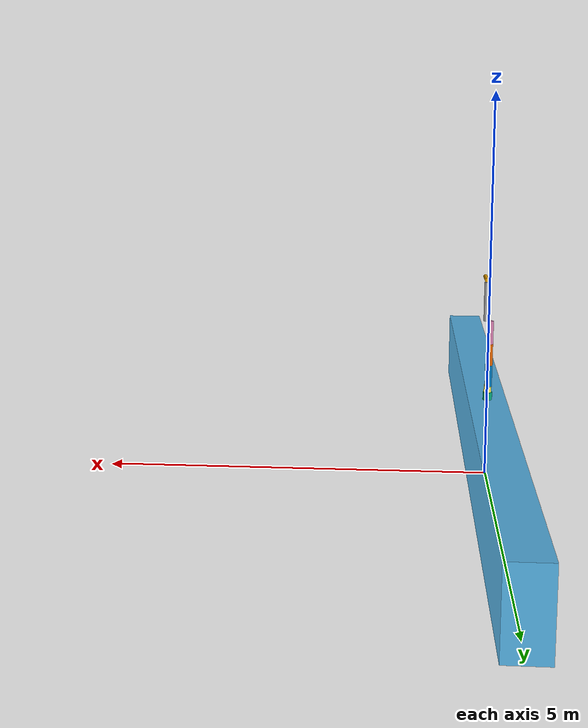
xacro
<?xml version="1.0"?>
        <robot xmlns:xacro="http://wiki.ros.org/xacro"  name="arm">
        <xacro:include filename="$(find man_gazebo)/urdf/common.gazebo.xacro" />
        <xacro:include filename="$(find man_gazebo)/urdf/6dof/transmission_6dof.xacro" />
        <xacro:include filename="$(find man_gazebo)/urdf/gazebo.xacro" />

        <link name="world" />

        <joint name="world_joint" type="fixed">
            <parent link="world" />
            <child link = "base_link" />
            <origin xyz="0 0 0" rpy="0.0 0.0 0.0" />
        </joint>

        <xacro:macro name="cylinder_inertial" params="radius length mass *origin">
        <inertial>
          <mass value="${mass}" />
          <xacro:insert_block name="origin" />
          <inertia ixx="${0.0833333 * mass * (3 * radius * radius + length * length)}" ixy="0.0" ixz="0.0"
            iyy="${0.0833333 * mass * (3 * radius * radius + length * length)}" iyz="0.0"
            izz="${0.5 * mass * radius * radius}" />
        </inertial>
        </xacro:macro>

        <xacro:macro name="joint_limit" params="joint_type link_length ">
            <xacro:if value="${joint_type == 'revolute'}"  >
                <xacro:property name="joint_upper_limit" value="${pi}" />
                <xacro:property name="joint_lower_limit" value="${-pi}" />
            </xacro:if>
            <xacro:unless value="${joint_type == 'revolute'}"  >
                <xacro:property name="joint_upper_limit" value="${link_length}" />
                <xacro:property name="joint_lower_limit" value="${0}" />
            </xacro:unless>
        <limit lower="${joint_lower_limit}" upper="${joint_upper_limit}" effort="150.0" velocity="3.15"/>
        </xacro:macro>

        <xacro:macro name="arm_robot" params="prefix ">
        <xacro:property name="base_radius" value="0.060" />
        <xacro:property name="base_length"  value="11" />
        <xacro:property name="base_height"  value="1" />
        <xacro:property name="base_width"  value="0.5" />
        <xacro:property name="base_mass" value="44" />

            <!-- Inertia parameters -->
        <xacro:property name="link0_mass" value="7" />
        <xacro:property name="link1_mass" value="3.7" />
        <xacro:property name="link2_mass" value="2.19447" />
        <xacro:property name="link3_mass" value="2.19447" />
        <xacro:property name="link4_mass" value="2.19447" />
        <xacro:property name="link5_mass" value="3.65745" />
        <xacro:property name="link6_mass" value="2.19447" />

        <xacro:property name="link0_radius" value="0.060" />
        <xacro:property name="link1_radius" value="0.049" />
        <xacro:property name="link2_radius" value="0.045" />
        <xacro:property name="link3_radius" value="0.040" />
        <xacro:property name="link4_radius" value="0.035" />
        <xacro:property name="link5_radius" value="0.030" />
        <xacro:property name="link6_radius" value="0.025" />

        <!-- Base Link -->
        <link name="${prefix}base_link" >
          <visual>
                <origin xyz="0 0 ${base_height/2}" rpy="0 0 0" />
            <geometry>
                    <box size="${base_width} ${base_length} ${base_height}"/>
            </geometry>
          </visual>
          <collision>
                 <origin xyz="0 0 ${base_height/2}" rpy="0 0 0" />
            <geometry>
                    <box size="${base_width} ${base_length} ${base_height}"/>
            </geometry>
          </collision>
          <inertial>
            <mass value="${base_mass}" />
            <origin xyz="0.0 0.0 ${base_height/2}" />
            <inertia ixx="436.5" ixy="0"  ixz="0"
                              iyy="1.8" iyz="0"
                                      izz="436.5"/>
          </inertial>

        </link>

        <xacro:property name="joint0_type" value="prismatic" />
        <xacro:property name="joint0_axe" value="0 1 0" />
        <xacro:property name="link0_length" value="0.1" />

        <!--  joint 0   -->
        <joint name="${prefix}joint0" type="${joint0_type}">
          <parent link="${prefix}base_link" />
          <child link = "${prefix}link0" />
          <origin xyz="0.0 0 ${base_height}" rpy="0 0.0 0" />
          <axis xyz="${joint0_axe}" />
          <xacro:joint_limit joint_type="${joint0_type}" link_length="${base_length/2}"/>
          <dynamics damping="0.0" friction="0.0"/>
        </joint>

         <!--  link 0 - The base of the robot  -->
        <link name="${prefix}link0">
          <visual>
            <origin xyz="0 0 ${link0_radius} " rpy="0 0 0" />
            <geometry>
                <cylinder radius="${link0_radius}" length="${link0_length}"/>
            </geometry>
          </visual>
          <collision>
             <origin xyz="0 0 ${link0_radius}" rpy="0 0 0" />
            <geometry>
                <cylinder radius="${link0_radius}" length="${link0_length}"  mass="${link0_mass}"/>
            </geometry>
          </collision>
          <xacro:cylinder_inertial radius="${link0_radius}" length="${link0_length}" mass="${link0_mass}">
            <origin xyz="0.0 0.0 ${link0_radius}" rpy="0 0 0" />
          </xacro:cylinder_inertial>
        </link>

<xacro:property name="joint1_type" value="revolute"/>
<xacro:property name="joint1_axe" value="0 0 1"/>
<xacro:property name="link1_length" value="0.1"/>
<!--  joint 1    -->
        <joint name="${prefix}joint1" type="${joint1_type}">
          <parent link="${prefix}link0" />
          <child link="${prefix}link1" />
          <origin xyz="0.0 0.0 ${link0_length+0.011}" rpy="0.0 0.0 0.0" />
          <axis xyz="${joint1_axe}"/>
          <xacro:joint_limit joint_type="${joint1_type}" link_length="${link1_length}"/>
          <dynamics damping="0.0" friction="0.0"/>
        </joint>
    <!--  link 1  -->
        <link name="${prefix}link1">
          <visual>
            <origin xyz="0 0 ${link1_length / 2} " rpy="0 0 0" />
            <geometry>
                <cylinder radius="${link1_radius}" length="${link1_length}"/>
            </geometry>
          </visual>
          <collision>
             <origin xyz="0 0 ${link1_length / 2}" rpy="0 0 0" />
            <geometry>
                <cylinder radius="${link1_radius}" length="${link1_length}"/>
            </geometry>
          </collision>
          <xacro:cylinder_inertial radius="${link1_radius}" length="${link1_length}" mass="${link1_mass}">
            <origin xyz="0.0 0.0 ${link1_length / 2}" rpy="0 0 0" />
          </xacro:cylinder_inertial>
        </link>
<xacro:property name="joint2_type" value="revolute"/>
<xacro:property name="joint2_axe" value="0 1 0"/>
<xacro:property name="link2_length" value="0.3"/>
<!--  joint 2   -->
        <joint name="${prefix}joint2" type="${joint2_type}">
          <parent link="${prefix}link1"/>
          <child link="${prefix}link2" />
          <origin xyz="0 ${link1_radius+link2_radius} ${link1_length}" rpy="0 0 0 "/>
          <axis xyz="${joint2_axe}"/>
          <xacro:joint_limit joint_type="${joint2_type}" link_length="${link2_length}"/>
          <dynamics damping="0.0" friction="0.0"/>
        </joint>
    <!-- link 2   -->
        <link name="${prefix}link2">
          <visual>
            <origin xyz="0 0 ${link2_length / 2}" rpy="0 0 0" />
            <geometry>
                <cylinder radius="${link2_radius}" length="${link2_length}"/>
            </geometry>
          </visual>
          <collision>
            <origin xyz="0 0 ${link2_length / 2 }" rpy="0 0 0" />
            <geometry>
                <cylinder radius="${link2_radius}" length="${link2_length}"/>
            </geometry>
          </collision>
          <xacro:cylinder_inertial radius="${link2_radius}" length="${link2_length}" mass="${link2_mass}">
            <origin xyz="0.0 0.0 ${link2_length / 2 }" rpy="0 0 0" />
          </xacro:cylinder_inertial>
        </link>
<xacro:property name="joint3_type" value="revolute"/>
<xacro:property name="joint3_axe" value="0 1 0"/>
<xacro:property name="link3_length" value="0.3"/>
<!--  joint 3   -->
        <joint name="${prefix}joint3" type="${joint3_type}">
          <parent link="${prefix}link2"/>
          <child link="${prefix}link3" />
          <origin xyz="0 ${link2_radius+link3_radius} ${link2_length}" rpy="0 0 0 "/>
          <axis xyz="${joint3_axe}"/>
          <xacro:joint_limit joint_type="${joint3_type}" link_length="${link3_length}"/>
          <dynamics damping="0.0" friction="0.0"/>
        </joint>
    <!-- link 3   -->
        <link name="${prefix}link3">
          <visual>
            <origin xyz="0 0 ${link3_length / 2}" rpy="0 0 0" />
            <geometry>
                <cylinder radius="${link3_radius}" length="${link3_length}"/>
            </geometry>
          </visual>
          <collision>
            <origin xyz="0 0 ${link3_length / 2 }" rpy="0 0 0" />
            <geometry>
                <cylinder radius="${link3_radius}" length="${link3_length}"/>
            </geometry>
          </collision>
          <xacro:cylinder_inertial radius="${link3_radius}" length="${link3_length}" mass="${link3_mass}">
            <origin xyz="0.0 0.0 ${link3_length / 2 }" rpy="0 0 0" />
          </xacro:cylinder_inertial>
        </link>
<xacro:property name="joint4_type" value="revolute"/>
<xacro:property name="joint4_axe" value="0 1 0"/>
<xacro:property name="link4_length" value="0.3"/>
<!--  joint 4   -->
        <joint name="${prefix}joint4" type="${joint4_type}">
          <parent link="${prefix}link3"/>
          <child link="${prefix}link4" />
          <origin xyz="0 ${link3_radius+link4_radius} ${link3_length}" rpy="0 0 0 "/>
          <axis xyz="${joint4_axe}"/>
          <xacro:joint_limit joint_type="${joint4_type}" link_length="${link4_length}"/>
          <dynamics damping="0.0" friction="0.0"/>
        </joint>
    <!-- link 4   -->
        <link name="${prefix}link4">
          <visual>
            <origin xyz="0 0 ${link4_length / 2}" rpy="0 0 0" />
            <geometry>
                <cylinder radius="${link4_radius}" length="${link4_length}"/>
            </geometry>
          </visual>
          <collision>
            <origin xyz="0 0 ${link4_length / 2 }" rpy="0 0 0" />
            <geometry>
                <cylinder radius="${link4_radius}" length="${link4_length}"/>
            </geometry>
          </collision>
          <xacro:cylinder_inertial radius="${link4_radius}" length="${link4_length}" mass="${link4_mass}">
            <origin xyz="0.0 0.0 ${link4_length / 2 }" rpy="0 0 0" />
          </xacro:cylinder_inertial>
        </link>
<xacro:property name="joint5_type" value="revolute"/>
<xacro:property name="joint5_axe" value="0 1 0"/>
<xacro:property name="link5_length" value="0.5"/>
<!--  joint 5   -->
        <joint name="${prefix}joint5" type="${joint5_type}">
          <parent link="${prefix}link4"/>
          <child link="${prefix}link5" />
          <origin xyz=" ${link4_radius+link5_radius} 0 ${link4_length}" rpy="0 0 ${-pi/2} "/>
          <axis xyz="${joint5_axe}"/>
          <xacro:joint_limit joint_type="${joint5_type}" link_length="${link5_length}"/>
          <dynamics damping="0.0" friction="0.0"/>
        </joint>
    <!-- link 5   -->
        <link name="${prefix}link5">
          <visual>
            <origin xyz="0 0 ${link5_length / 2}" rpy="0 0 0" />
            <geometry>
                <cylinder radius="${link5_radius}" length="${link5_length}"/>
            </geometry>
          </visual>
          <collision>
            <origin xyz="0 0 ${link5_length / 2 }" rpy="0 0 0" />
            <geometry>
                <cylinder radius="${link5_radius}" length="${link5_length}"/>
            </geometry>
          </collision>
          <xacro:cylinder_inertial radius="${link5_radius}" length="${link5_length}" mass="${link5_mass}">
            <origin xyz="0.0 0.0 ${link5_length / 2 }" rpy="0 0 0" />
          </xacro:cylinder_inertial>
        </link>
<xacro:property name="joint6_type" value="revolute"/>
<xacro:property name="joint6_axe" value="0 0 1"/>
<xacro:property name="link6_length" value="0.3"/>
<!--  joint 6   -->
        <joint name="${prefix}joint6" type="${joint6_type}">
          <parent link="${prefix}link5"/>
          <child link="${prefix}link6" />
          <origin xyz="0 0 ${link6_radius + link5_length}" rpy="0 ${pi/2} 0 "/>
          <axis xyz="${joint6_axe}"/>
          <xacro:joint_limit joint_type="${joint6_type}" link_length="${link6_length}"/>
          <dynamics damping="0.0" friction="0.0"/>
        </joint>
    <!-- link 6   -->
        <link name="${prefix}link6">
          <visual>
            <origin xyz="0 0 ${link6_length / 2}" rpy="0 0 0" />
            <geometry>
                <cylinder radius="${link6_radius}" length="${link6_length}"/>
            </geometry>
          </visual>
          <collision>
            <origin xyz="0 0 ${link6_length / 2 }" rpy="0 0 0" />
            <geometry>
                <cylinder radius="${link6_radius}" length="${link6_length}"/>
            </geometry>
          </collision>
          <xacro:cylinder_inertial radius="${link6_radius}" length="${link6_length}" mass="${link6_mass}">
            <origin xyz="0.0 0.0 ${link6_length / 2 }" rpy="0 0 0" />
          </xacro:cylinder_inertial>
        </link>
        <!-- Sprayer joint - fictive joint -->
        <joint name="fake_joint" type="revolute">
            <parent link="${prefix}link6" />
            <child link = "camera_link" />
            <origin xyz="0.0  0.0 ${link6_length}" rpy="0.0 0.0 0" />
            <axis xyz="0 0 1"/>
            <xacro:joint_limit joint_type="revolute" link_length="0.1"/>
            <dynamics damping="0.0" friction="0.0"/>
        </joint>

        <!-- Sprayer -->
        <link name="camera_link">
          <collision>
            <origin rpy="0 0 0" xyz="0 0 0.005"/>
            <geometry>
            <box size="0.01 0.01 0.01"/>
            </geometry>
          </collision>
        <visual>
            <geometry>
            <box size="0.01 0.01 0.01"/>
            </geometry>
        </visual>
          <xacro:cylinder_inertial radius="0.01" length="0.01" mass="0.01">
            <origin xyz="0.0 0.0 0.005" rpy="0 0 0" />
          </xacro:cylinder_inertial>
        </link>

        <!-- ee joint -->
        <joint name="${prefix}ee_fixed_joint" type="fixed">
          <parent link="camera_link" />
          <child link = "${prefix}ee_link" />
          <origin xyz="0.0  0.0 0.01" rpy="0.0 0.0 0" />
        </joint>

        <!-- ee link -->
        <link name="${prefix}ee_link">
          <collision>
            <geometry>
              <box size="0.01 0.01 0.01"/>
            </geometry>
            <origin rpy="0 0 0" xyz="0 0 0.005"/>
          </collision>
        </link>

            <xacro:arm_transmission prefix="${prefix}" />
            <xacro:arm_gazebo prefix="${prefix}" />
            </xacro:macro>
            <xacro:arm_robot prefix=""/>
        </robot>
